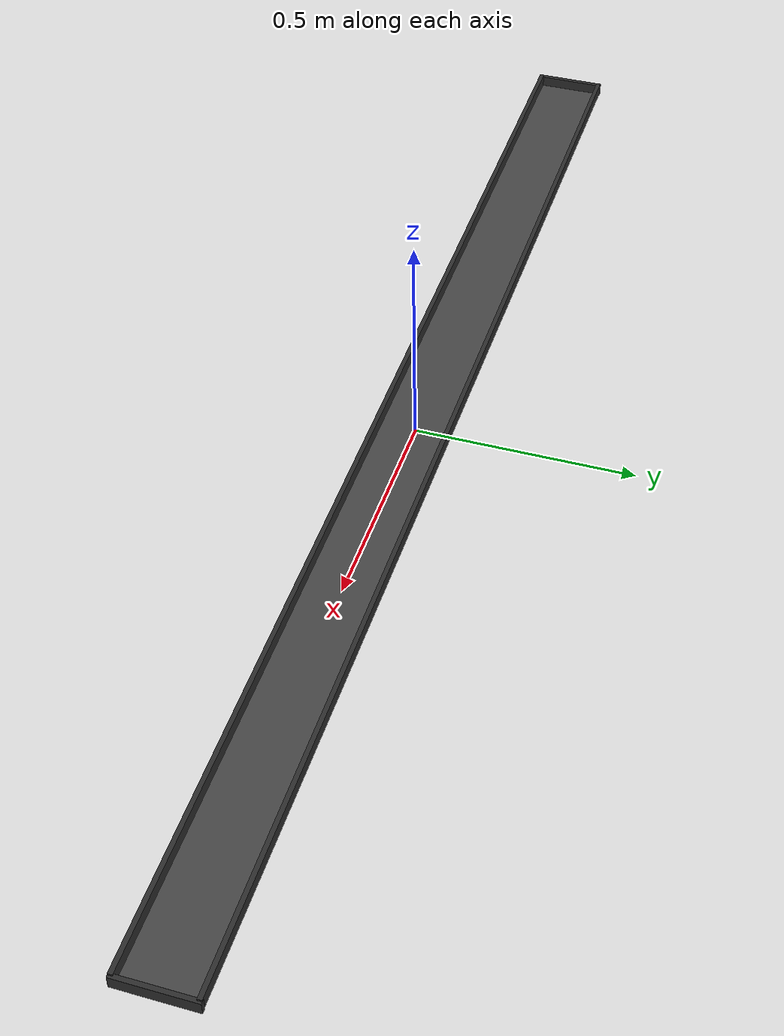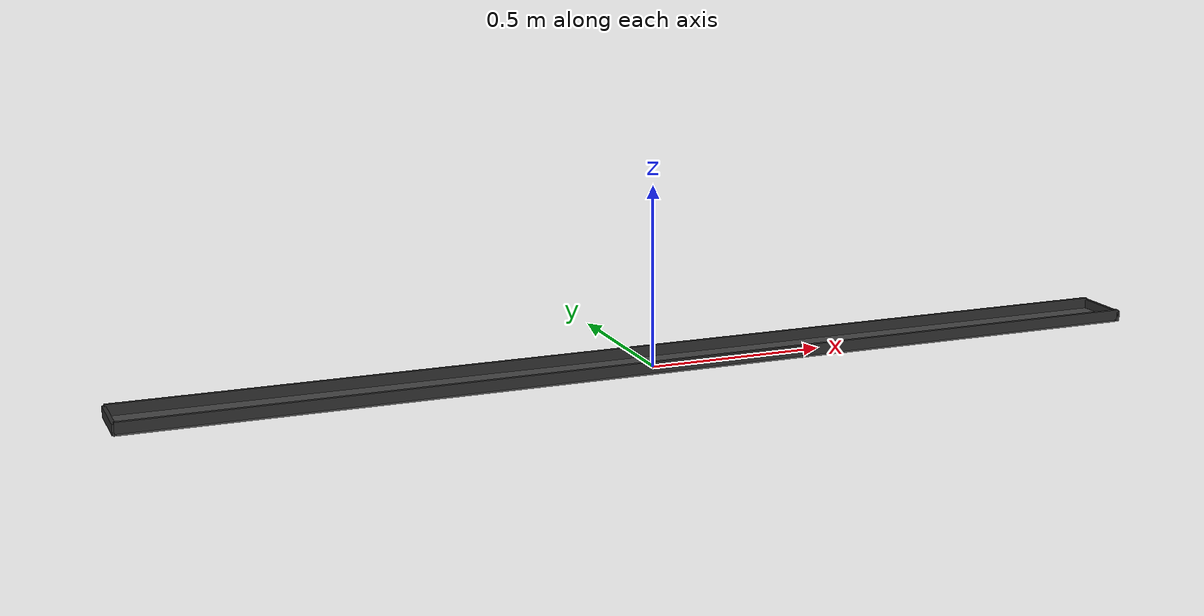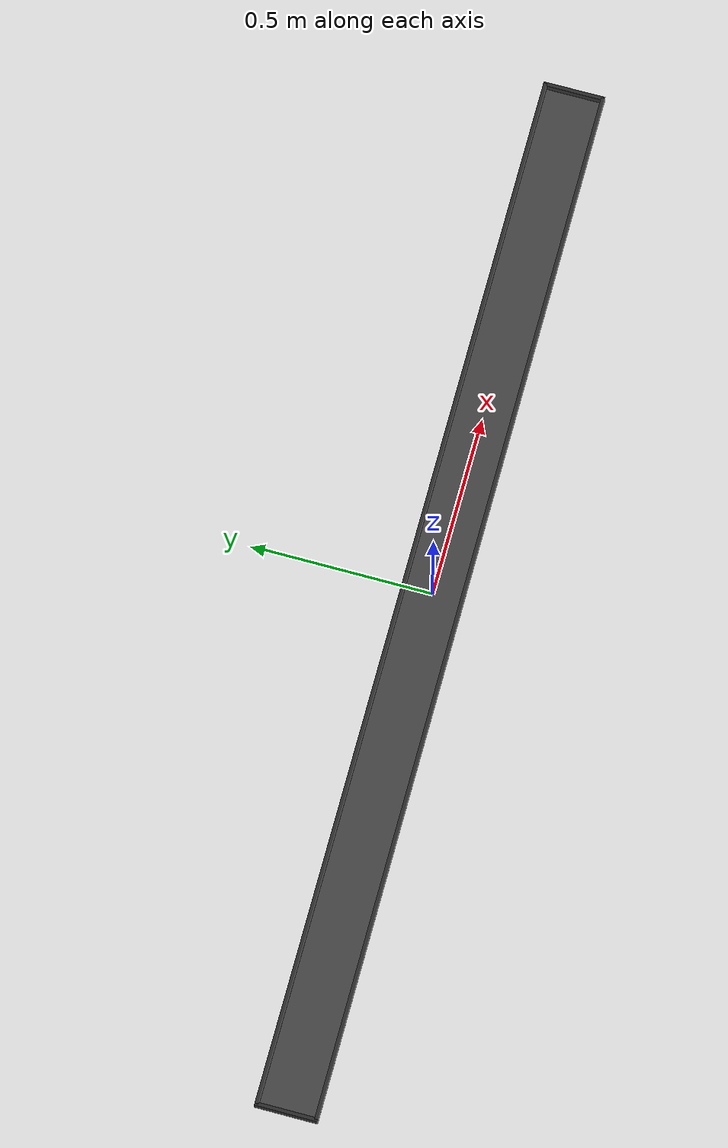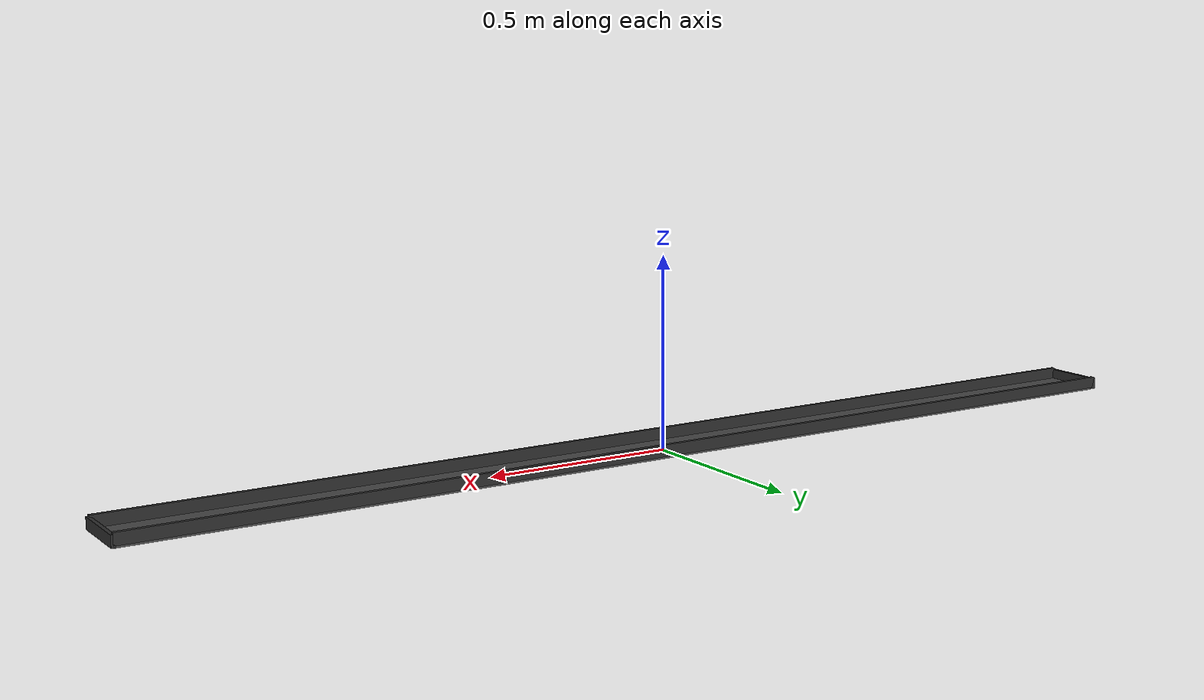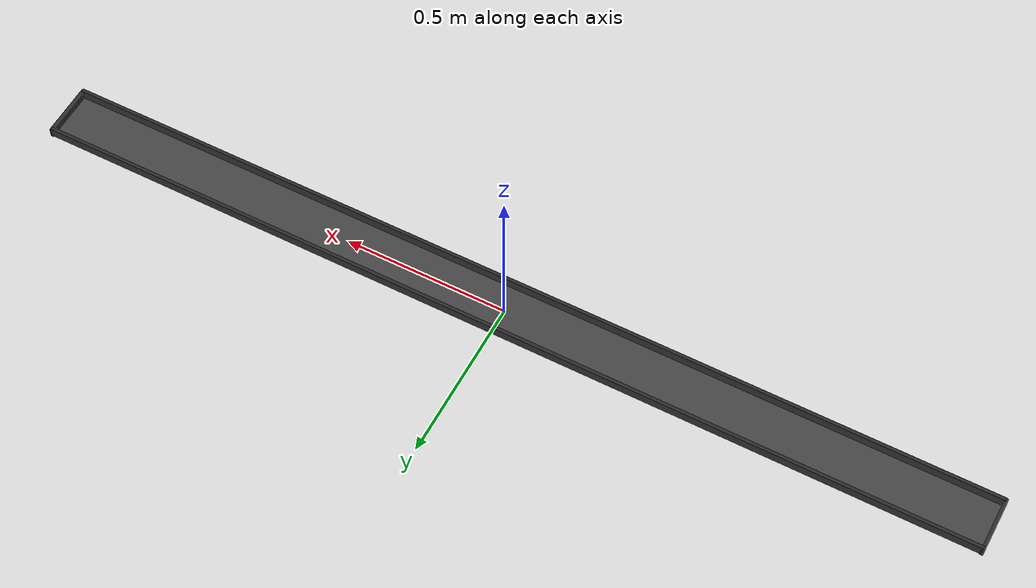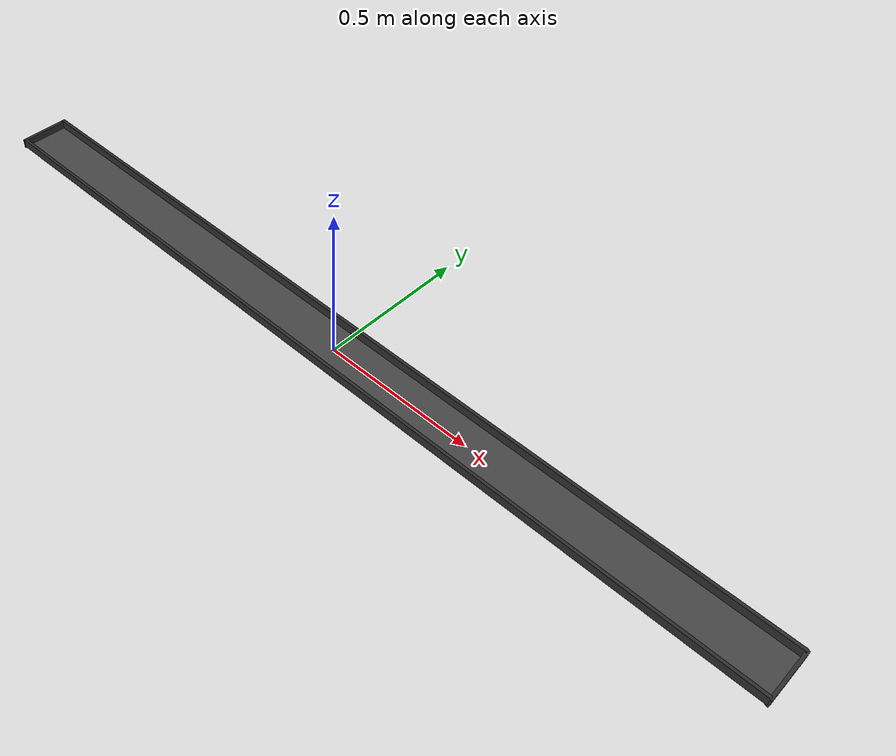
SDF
<?xml version="1.0" ?>
<sdf version="1.10">
  <model name="conveyor_main">
    <static>true</static>

    <!-- Belt surface -->
    <link name="belt">
      <pose>0 0 0.004 0 0 0</pose>
      <collision name="col">
        <geometry><box><size>2.9 0.15 0.008</size></box></geometry>
      </collision>
      <visual name="vis">
        <geometry><box><size>2.9 0.15 0.008</size></box></geometry>
        <material>
          <ambient>0.18 0.18 0.18 1</ambient>
          <diffuse>0.28 0.28 0.28 1</diffuse>
          <specular>0.05 0.05 0.05 1</specular>
        </material>
      </visual>
    </link>

    <!-- Left rail (-Y side, robot-facing) -->
    <link name="rail_left">
      <pose>0 -0.080 0.023 0 0 0</pose>
      <collision name="col">
        <geometry><box><size>2.9 0.010 0.030</size></box></geometry>
      </collision>
      <visual name="vis">
        <geometry><box><size>2.9 0.010 0.030</size></box></geometry>
        <material>
          <ambient>0.10 0.10 0.10 1</ambient>
          <diffuse>0.18 0.18 0.18 1</diffuse>
          <specular>0.1 0.1 0.1 1</specular>
        </material>
      </visual>
    </link>

    <!-- Right rail (+Y side, return-conveyor side) -->
    <link name="rail_right">
      <pose>0 0.080 0.023 0 0 0</pose>
      <collision name="col">
        <geometry><box><size>2.9 0.010 0.030</size></box></geometry>
      </collision>
      <visual name="vis">
        <geometry><box><size>2.9 0.010 0.030</size></box></geometry>
        <material>
          <ambient>0.10 0.10 0.10 1</ambient>
          <diffuse>0.18 0.18 0.18 1</diffuse>
          <specular>0.1 0.1 0.1 1</specular>
        </material>
      </visual>
    </link>

    <!-- Left end cap -->
    <link name="cap_left">
      <pose>-1.45 0 0.019 0 0 0</pose>
      <collision name="col">
        <geometry><box><size>0.010 0.170 0.030</size></box></geometry>
      </collision>
      <visual name="vis">
        <geometry><box><size>0.010 0.170 0.030</size></box></geometry>
        <material>
          <ambient>0.10 0.10 0.10 1</ambient>
          <diffuse>0.18 0.18 0.18 1</diffuse>
        </material>
      </visual>
    </link>

    <!-- Right end cap -->
    <link name="cap_right">
      <pose>1.45 0 0.019 0 0 0</pose>
      <collision name="col">
        <geometry><box><size>0.010 0.170 0.030</size></box></geometry>
      </collision>
      <visual name="vis">
        <geometry><box><size>0.010 0.170 0.030</size></box></geometry>
        <material>
          <ambient>0.10 0.10 0.10 1</ambient>
          <diffuse>0.18 0.18 0.18 1</diffuse>
        </material>
      </visual>
    </link>

  </model>
</sdf>
